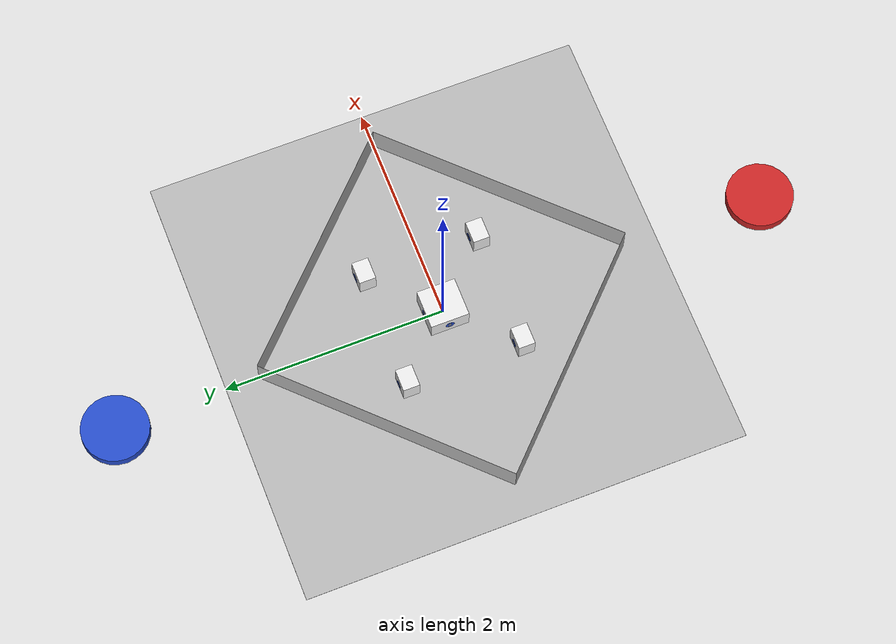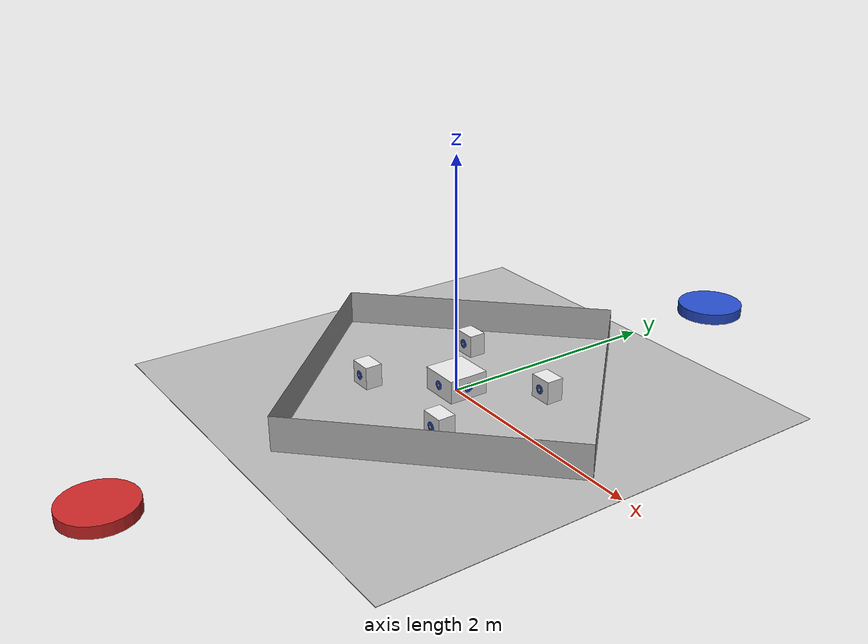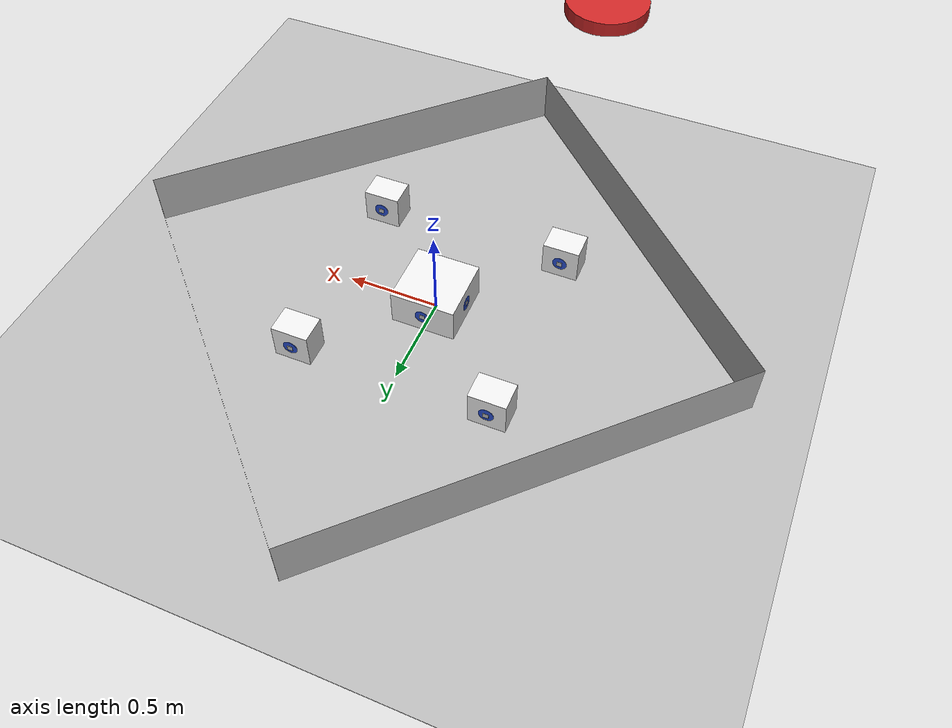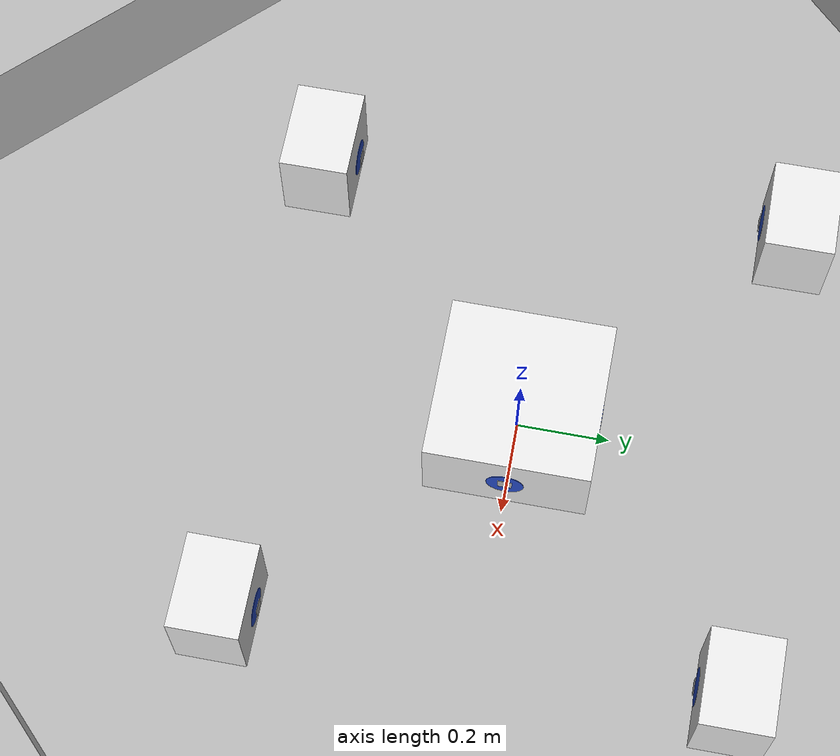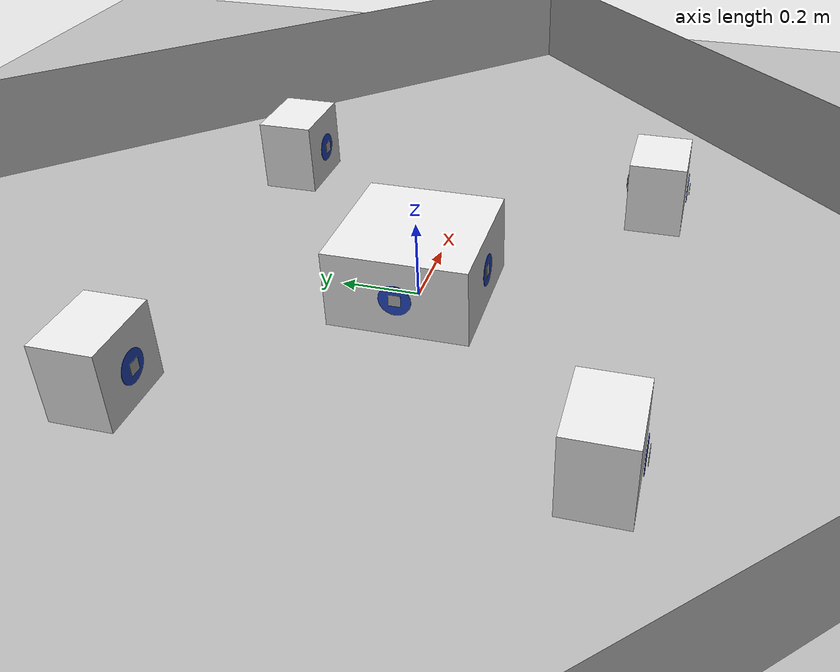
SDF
<?xml version="1.0" ?>
<sdf version="1.4">
<world name="onigiri_field">

<scene>
  <shadows>false</shadows>
</scene>

<physics name="ode_100iters" type="ode">
  <real_time_update_rate>1000</real_time_update_rate>
  <max_step_size>0.001</max_step_size>
</physics>

<gui>
  <camera name="camera">
    <pose>1.5 -5. 6. 0.0 .85 1.8</pose>
    <view_controller>orbit</view_controller>
  </camera>
</gui>
<include><uri>model://sun</uri></include>
<include><uri>model://my_ground_plane</uri></include>

<!-- Centor BOX -->
<include>
  <name>box_0</name>
  <pose>0 0 0.1 0 0 0</pose>
  <uri>model://center_box</uri>
</include>
<include>
  <name>plate_1</name>
  <pose>0 0.1755 0.1 0 0 0</pose>
  <uri>model://plate</uri>
</include>
<model name="box_0_tag_1">
  <static>true</static>
  <pose>0 0.176 0.1 0 0 0</pose>
  <link name="link">
    <visual name="visual">
      <geometry><box><size>0.03 0.001 0.03</size></box></geometry>
      <material>
        <script>
          <uri>model://tags</uri> <name>0001</name>
        </script>
      </material>
    </visual>
  </link>
</model>

<include>
  <name>plate_2</name>
  <pose>0 -0.1755 0.1 0 0 0</pose>
  <uri>model://plate</uri>
</include>
<model name="box_0_tag_2">
  <static>true</static>
  <pose>0 -0.176 0.1 0 0 0</pose>
  <link name="link">
    <visual name="visual">
      <geometry><box><size>0.03 0.001 0.03</size></box></geometry>
      <material>
        <script>
          <uri>model://tags</uri>
          <name>0002</name>
        </script>
      </material>
    </visual>
  </link>
</model>

<include>
  <name>plate_3</name>
  <pose>0.1755 0 0.1 0 0 1.571</pose>
  <uri>model://plate</uri>
</include>
<model name="box_0_tag_3">
  <static>true</static>
  <pose>0.176 0 0.1 0 0 1.571</pose>
  <link name="link">
    <visual name="visual">
      <geometry><box><size>0.03 0.001 0.03</size></box></geometry>
      <material>
        <script>
          <uri>model://tags</uri>
          <name>0003</name>
        </script>
      </material>
    </visual>
  </link>
</model>

<include>
  <name>plate_4</name>
  <pose>-0.1755 0 0.1 0 0 1.571</pose>
  <uri>model://plate</uri>
</include>
<model name="box_0_tag_4">
  <static>true</static>
  <pose>-0.176 0 0.1 0 0 1.571</pose>
  <link name="link">
    <visual name="visual">
      <geometry><box><size>0.03 0.001 0.03</size></box></geometry>
      <material>
        <script>
          <uri>model://tags</uri>
          <name>0004</name>
        </script>
      </material>
    </visual>
  </link>
</model>

<!-- Corner BOX -->

<include>
  <name>box_1</name>
  <pose>0.53 0.53 0.1 0 0 0</pose>
  <uri>model://corner_box</uri>
</include>
<include>
  <name>plate_5</name>
  <pose>0.53 0.61 0.1 0 0 0</pose>
  <uri>model://plate</uri>
</include>
<model name="box_1_tag_5">
  <static>true</static>
  <pose>0.53 0.615 0.1 0 0 0</pose>
  <link name="link">
    <visual name="visual">
      <geometry><box><size>0.03 0.001 0.03</size></box></geometry>
      <material>
        <script>
          <uri>model://tags</uri>
          <name>0005</name>
        </script>
      </material>
    </visual>
  </link>
</model>

<include>
  <name>plate_6</name>
  <pose>0.53 0.45 0.1 0 0 0</pose>
  <uri>model://plate</uri>
</include>
<model name="box_1_tag_6">
  <static>true</static>
  <pose>0.53 0.445 0.1 0 0 0</pose>
  <link name="link">
    <visual name="visual">
      <geometry><box><size>0.03 0.001 0.03</size></box></geometry>
      <material>
        <script>
          <uri>model://tags</uri>
          <name>0006</name>
        </script>
      </material>
    </visual>
  </link>
</model>

<include>
  <name>box_2</name>
  <pose>0.53 -0.53 0.1 0 0 0</pose>
  <uri>model://corner_box</uri>
</include>
<include>
  <name>plate_7</name>
  <pose>0.53 -0.45 0.1 0 0 0</pose>
  <uri>model://plate</uri>
</include>
<model name="box_2_tag_7">
  <static>true</static>
  <pose>0.53 -0.445 0.1 0 0 0</pose>
  <link name="link">
    <visual name="visual">
      <geometry><box><size>0.03 0.001 0.03</size></box></geometry>
      <material>
        <script>
          <uri>model://tags</uri>
          <name>0007</name>
        </script>
      </material>
    </visual>
  </link>
</model>

<include>
  <name>plate_8</name>
  <pose>0.53 -0.61 0.1 0 0 0</pose>
  <uri>model://plate</uri>
</include>
<model name="box_2_tag_8">
  <static>true</static>
  <pose>0.53 -0.615 0.1 0 0 0</pose>
  <link name="link">
    <visual name="visual">
      <geometry><box><size>0.03 0.001 0.03</size></box></geometry>
      <material>
        <script>
          <uri>model://tags</uri>
          <name>0008</name>
        </script>
      </material>
    </visual>
  </link>
</model>

<include>
  <name>box_3</name>
  <pose>-0.53 0.53 0.1 0 0 0</pose>
  <uri>model://corner_box</uri>
</include>
<include>
  <name>plate_9</name>
  <pose>-0.53 0.61 0.1 0 0 0</pose>
  <uri>model://plate</uri>
</include>
<model name="box_3_tag_9">
  <static>true</static>
  <pose>-0.53 0.615 0.1 0 0 0</pose>
  <link name="link">
    <visual name="visual">
      <geometry><box><size>0.03 0.001 0.03</size></box></geometry>
      <material>
        <script>
          <uri>model://tags</uri>
          <name>0009</name>
        </script>
      </material>
    </visual>
  </link>
</model>

<include>
  <name>plate_10</name>
  <pose>-0.53 0.45 0.1 0 0 0</pose>
  <uri>model://plate</uri>
</include>
<model name="box_3_tag_10">
  <static>true</static>
  <pose>-0.53 0.445 0.1 0 0 0</pose>
  <link name="link">
    <visual name="visual">
      <geometry><box><size>0.03 0.001 0.03</size></box></geometry>
      <material>
        <script>
          <uri>model://tags</uri>
          <name>0010</name>
        </script>
      </material>
    </visual>
  </link>
</model>

<include>
  <name>box_4</name>
  <pose>-0.53 -0.53 0.1 0 0 0</pose>
  <uri>model://corner_box</uri>
</include>
<include>
  <name>plate_11</name>
  <pose>-0.53 -0.45 0.1 0 0 0</pose>
  <uri>model://plate</uri>
</include>
<model name="box_4_tag_11">
  <static>true</static>
  <pose>-0.53 -0.445 0.1 0 0 0</pose>
  <link name="link">
    <visual name="visual">
      <geometry><box><size>0.03 0.001 0.03</size></box></geometry>
      <material>
        <script>
          <uri>model://tags</uri>
          <name>0011</name>
        </script>
      </material>
    </visual>
  </link>
</model>

<include>
  <name>plate_12</name>
  <pose>-0.53 -0.61 0.1 0 0 0</pose>
  <uri>model://plate</uri>
</include>
<model name="box_4_tag_12">
  <static>true</static>
  <pose>-0.53 -0.615 0.1 0 0 0</pose>
  <link name="link">
    <visual name="visual">
      <geometry><box><size>0.03 0.001 0.03</size></box></geometry>
      <material>
        <script>
          <uri>model://tags</uri>
          <name>0012</name>
        </script>
      </material>
    </visual>
  </link>
</model>

<!-- WALL -->

  <model name="wall_1">
    <static>true</static>
    <pose>0.8485 0.8485 0.15 0 0 -0.785398163397</pose>
    <link name="link">
      <collision name='visual'>
        <geometry>
          <box>
            <size>2.39992041535 0.0001 0.3</size>
          </box>
        </geometry>
      </collision>
      <visual name='visual'>
        <geometry>
          <box>
            <size>2.39992041535 0.0001 0.3</size>
          </box>
        </geometry>
        <material>
          <script>
            <uri>model://wall</uri>
            <name>wall_1</name>
          </script>
        </material>
      </visual>
    </link>
  </model>

  <model name="wall_2">
    <static>true</static>
    <pose>0.8485 -0.8485 0.15 0 0 -2.35619449019</pose>
    <link name="link">
      <collision name='visual'>
        <geometry>
          <box>
            <size>2.39992041535 0.0001 0.3</size>
          </box>
        </geometry>
      </collision>
      <visual name='visual'>
        <geometry>
          <box>
            <size>2.39992041535 0.0001 0.3</size>
          </box>
        </geometry>
        <material>
          <script>
            <uri>model://wall</uri>
            <name>wall_2</name>
          </script>
        </material>
      </visual>
    </link>
  </model>

  <model name="wall_3">
    <static>true</static>
    <pose>-0.8485 -0.8485 0.15 0 0 2.35619449019</pose>
    <link name="link">
      <collision name='visual'>
        <geometry>
          <box>
            <size>2.39992041535 0.0001 0.3</size>
          </box>
        </geometry>
      </collision>
      <visual name='visual'>
        <geometry>
          <box>
            <size>2.39992041535 0.0001 0.3</size>
          </box>
        </geometry>
        <material>
          <script>
            <uri>model://wall</uri>
            <name>wall_3</name>
          </script>
        </material>
      </visual>
    </link>
  </model>

  <model name="wall_4">
    <static>true</static>
    <pose>-0.8485 0.8485 0.15 0 0 0.785398163397</pose>
    <link name="link">
      <collision name='visual'>
        <geometry>
          <box>
            <size>2.39992041535 0.0001 0.3</size>
          </box>
        </geometry>
      </collision>
      <visual name='visual'>
        <geometry>
          <box>
            <size>2.39992041535 0.0001 0.3</size>
          </box>
        </geometry>
        <material>
          <script>
            <uri>model://wall</uri>
            <name>wall_4</name>
          </script>
        </material>
      </visual>
    </link>
  </model>

<!-- RED and BLUE maker -->
<model name="blue_maker">
  <static>true</static>
  <link name="link">
    <visual name="visual">
      <pose>0 3 0 0 0 0</pose>
      <geometry>
        <cylinder>
          <radius>0.3</radius>
          <length>0.1</length>
        </cylinder>
      </geometry>
      <material><script><name>Gazebo/Blue</name></script></material>
    </visual>
  </link>
</model>
<model name="red_maker">
  <static>true</static>
  <link name="link">
    <visual name="visual">
      <pose>0 -3 0 0 0 0</pose>
      <geometry>
        <cylinder>
          <radius>0.3</radius>
          <length>0.1</length>
        </cylinder>
      </geometry>
      <material><script><name>Gazebo/Red</name></script></material>
    </visual>
  </link>
</model>

</world>
</sdf>

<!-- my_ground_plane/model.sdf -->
<sdf version="1.4">
<model name="my_ground_plane">
  <static>true</static>
    <link name="link">
      <collision name="collision">
        <geometry>
          <plane>
            <normal>0 0 1</normal>
            <size>4 4</size>
          </plane>
        </geometry>
        <surface>
          <friction>
            <ode>
              <mu>100</mu>
              <mu2>50</mu2>
            </ode>
          </friction>
        </surface>
      </collision>
      <visual name="visual">
        <cast_shadows>false</cast_shadows>
        <geometry>
          <plane>
            <normal>0 0 1</normal>
            <size>4 4</size>
          </plane>
        </geometry>
        <material>
          <script>
            <uri>model://my_ground_plane/my_ground_plane.material</uri>
            <name>MyGroundPlane/Image</name>
          </script>
        </material>
      </visual>
    </link>
  </model>
</sdf>

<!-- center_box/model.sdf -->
<sdf version="1.5">
  <model name="center_box">
    <static>true</static>
    <link name="link">
      <collision name="collision">
        <pose>0 0 0 0 0 0</pose>
        <geometry>
          <box>
            <size>0.35 0.35 0.2</size>
          </box>
        </geometry>
      </collision>
      <visual name="visual">
        <pose>0 0 0 0 0 0</pose>
        <geometry> <box> <size>0.35 0.35 0.2</size> </box> </geometry>
        <material><script><name>Gazebo/White</name></script></material>
      </visual>
    </link>
  </model>
</sdf>

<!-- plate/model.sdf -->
<sdf version="1.5">
  <model name="plate">
    <static>true</static>
    <link name="link">
      <collision name="collision">
        <pose>0 0 0 1.571 0 0</pose>
        <geometry>
            <cylinder>
              <radius>0.04</radius>
              <length>0.001</length>
            </cylinder>
        </geometry>
      </collision>
      <visual name="visual">
        <pose>0 0 0 1.571 0 0</pose>
        <geometry>
            <cylinder>
              <radius>0.04</radius>
              <length>0.001</length>
            </cylinder>
        </geometry>
        <material><script><name>Gazebo/Blue</name></script></material>
      </visual>
    </link>
  </model>
</sdf>

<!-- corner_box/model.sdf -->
<sdf version="1.5">
  <model name="corner_box">
    <static>true</static>
    <link name="link">
      <collision name="collision">
        <pose>0 0 0 0 0 0</pose>
        <geometry><box><size>0.2 0.15 0.2</size></box></geometry>
      </collision>
      <visual name="visual">
        <pose>0 0 0 0 0 0</pose>
        <geometry><box><size>0.2 0.15 0.2</size></box></geometry>
        <material><script><name>Gazebo/White</name></script></material>
      </visual>
    </link>
  </model>
</sdf>
